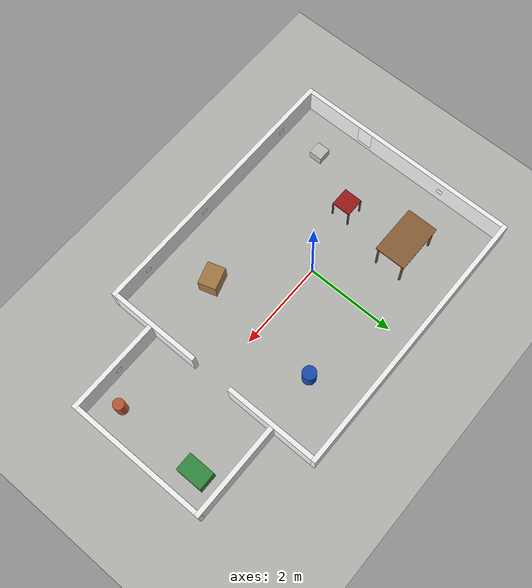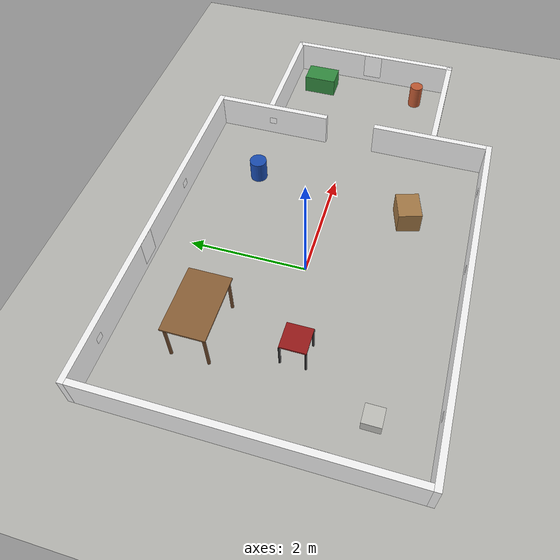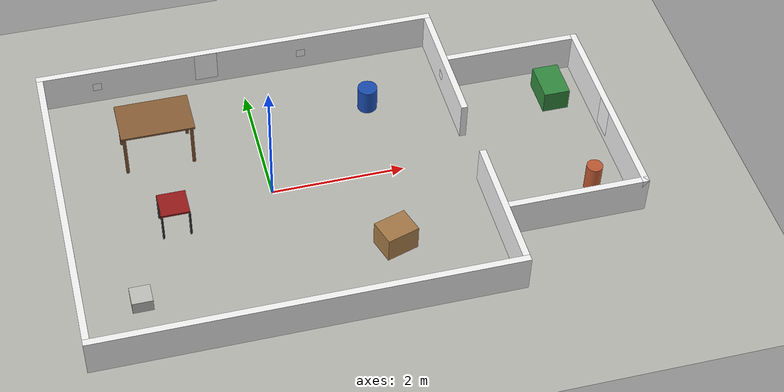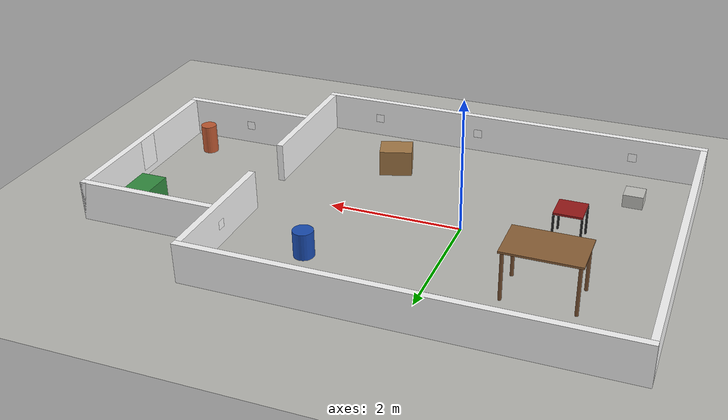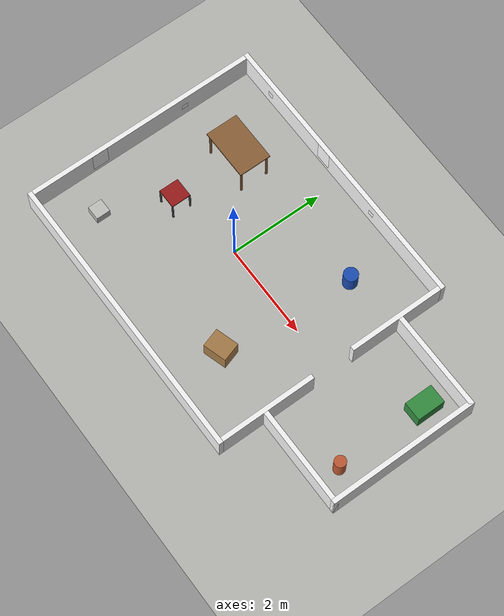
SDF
<?xml version="1.0"?>
<!-- GENERATED by scripts/gen_world.py from config/apartment_layout.yaml. Do not edit by hand. -->
<sdf version="1.8">
  <world name="apartment">
    <physics name="1ms" type="ignored">
      <max_step_size>0.001</max_step_size>
      <real_time_factor>1.0</real_time_factor>
    </physics>
    <plugin filename="ignition-gazebo-physics-system" name="ignition::gazebo::systems::Physics"/>
    <plugin filename="ignition-gazebo-user-commands-system" name="ignition::gazebo::systems::UserCommands"/>
    <plugin filename="ignition-gazebo-scene-broadcaster-system" name="ignition::gazebo::systems::SceneBroadcaster"/>
    <plugin filename="ignition-gazebo-sensors-system" name="ignition::gazebo::systems::Sensors">
      <render_engine>ogre2</render_engine>
    </plugin>
    <plugin filename="ignition-gazebo-imu-system" name="ignition::gazebo::systems::Imu"/>

    <scene>
      <ambient>0.6 0.6 0.6 1.0</ambient>
      <background>0.85 0.85 0.82 1</background>
      <shadows>false</shadows>
      <grid>false</grid>
    </scene>

    <light type="directional" name="sun">
      <cast_shadows>false</cast_shadows>
      <pose>0 0 10 0 0 0</pose>
      <diffuse>0.8 0.8 0.8 1</diffuse>
      <specular>0.1 0.1 0.1 1</specular>
      <direction>-0.3 0.2 -0.9</direction>
    </light>

    <model name="floor">
      <static>true</static>
      <pose>0 0 0 0 0 0</pose>
      <link name="link">
        <collision name="collision"><geometry><plane><normal>0 0 1</normal><size>14.0 10.0</size></plane></geometry><surface><friction><ode><mu>1.0</mu><mu2>1.0</mu2></ode></friction></surface></collision>
        <visual name="visual"><geometry><plane><normal>0 0 1</normal><size>14.0 10.0</size></plane></geometry><material><ambient>0.72 0.72 0.7 1.0</ambient><diffuse>0.72 0.72 0.7 1.0</diffuse><specular>0.02 0.02 0.02 1</specular></material></visual>
      </link>
    </model>
    <model name="wall_main_south">
      <static>true</static>
      <pose>0.0 -2.55 0.3 0 0 0</pose>
      <link name="link">
        <collision name="collision"><geometry><box><size>6.2 0.1 0.6</size></box></geometry></collision>
        <visual name="visual"><geometry><box><size>6.2 0.1 0.6</size></box></geometry><material><ambient>0.97 0.97 0.97 1.0</ambient><diffuse>0.97 0.97 0.97 1.0</diffuse><specular>0.02 0.02 0.02 1</specular></material></visual>
      </link>
    </model>
    <model name="wall_main_north">
      <static>true</static>
      <pose>0.0 2.55 0.3 0 0 0</pose>
      <link name="link">
        <collision name="collision"><geometry><box><size>6.2 0.1 0.6</size></box></geometry></collision>
        <visual name="visual"><geometry><box><size>6.2 0.1 0.6</size></box></geometry><material><ambient>0.97 0.97 0.97 1.0</ambient><diffuse>0.97 0.97 0.97 1.0</diffuse><specular>0.02 0.02 0.02 1</specular></material></visual>
      </link>
    </model>
    <model name="wall_main_west">
      <static>true</static>
      <pose>-3.05 0.0 0.3 0 0 0</pose>
      <link name="link">
        <collision name="collision"><geometry><box><size>0.1 5.0 0.6</size></box></geometry></collision>
        <visual name="visual"><geometry><box><size>0.1 5.0 0.6</size></box></geometry><material><ambient>0.97 0.97 0.97 1.0</ambient><diffuse>0.97 0.97 0.97 1.0</diffuse><specular>0.02 0.02 0.02 1</specular></material></visual>
      </link>
    </model>
    <model name="wall_shared_south">
      <static>true</static>
      <pose>3.05 -1.475 0.3 0 0 0</pose>
      <link name="link">
        <collision name="collision"><geometry><box><size>0.1 2.05 0.6</size></box></geometry></collision>
        <visual name="visual"><geometry><box><size>0.1 2.05 0.6</size></box></geometry><material><ambient>0.97 0.97 0.97 1.0</ambient><diffuse>0.97 0.97 0.97 1.0</diffuse><specular>0.02 0.02 0.02 1</specular></material></visual>
      </link>
    </model>
    <model name="wall_shared_north">
      <static>true</static>
      <pose>3.05 1.475 0.3 0 0 0</pose>
      <link name="link">
        <collision name="collision"><geometry><box><size>0.1 2.05 0.6</size></box></geometry></collision>
        <visual name="visual"><geometry><box><size>0.1 2.05 0.6</size></box></geometry><material><ambient>0.97 0.97 0.97 1.0</ambient><diffuse>0.97 0.97 0.97 1.0</diffuse><specular>0.02 0.02 0.02 1</specular></material></visual>
      </link>
    </model>
    <model name="wall_side_south">
      <static>true</static>
      <pose>4.15 -1.55 0.3 0 0 0</pose>
      <link name="link">
        <collision name="collision"><geometry><box><size>2.1 0.1 0.6</size></box></geometry></collision>
        <visual name="visual"><geometry><box><size>2.1 0.1 0.6</size></box></geometry><material><ambient>0.97 0.97 0.97 1.0</ambient><diffuse>0.97 0.97 0.97 1.0</diffuse><specular>0.02 0.02 0.02 1</specular></material></visual>
      </link>
    </model>
    <model name="wall_side_north">
      <static>true</static>
      <pose>4.15 1.55 0.3 0 0 0</pose>
      <link name="link">
        <collision name="collision"><geometry><box><size>2.1 0.1 0.6</size></box></geometry></collision>
        <visual name="visual"><geometry><box><size>2.1 0.1 0.6</size></box></geometry><material><ambient>0.97 0.97 0.97 1.0</ambient><diffuse>0.97 0.97 0.97 1.0</diffuse><specular>0.02 0.02 0.02 1</specular></material></visual>
      </link>
    </model>
    <model name="wall_side_east">
      <static>true</static>
      <pose>5.15 0.0 0.3 0 0 0</pose>
      <link name="link">
        <collision name="collision"><geometry><box><size>0.1 3.2 0.6</size></box></geometry></collision>
        <visual name="visual"><geometry><box><size>0.1 3.2 0.6</size></box></geometry><material><ambient>0.97 0.97 0.97 1.0</ambient><diffuse>0.97 0.97 0.97 1.0</diffuse><specular>0.02 0.02 0.02 1</specular></material></visual>
      </link>
    </model>
    <model name="table_leg_0">
      <static>true</static>
      <pose>-1.0 1.5 0.36 0 0 0.0</pose>
      <link name="link">
        <collision name="collision"><geometry><cylinder><radius>0.025</radius><length>0.72</length></cylinder></geometry></collision>
        <visual name="visual"><geometry><cylinder><radius>0.025</radius><length>0.72</length></cylinder></geometry><material><ambient>0.45 0.3 0.18 1.0</ambient><diffuse>0.45 0.3 0.18 1.0</diffuse><specular>0.02 0.02 0.02 1</specular></material></visual>
      </link>
    </model>
    <model name="table_leg_1">
      <static>true</static>
      <pose>-2.0 1.5 0.36 0 0 0.0</pose>
      <link name="link">
        <collision name="collision"><geometry><cylinder><radius>0.025</radius><length>0.72</length></cylinder></geometry></collision>
        <visual name="visual"><geometry><cylinder><radius>0.025</radius><length>0.72</length></cylinder></geometry><material><ambient>0.45 0.3 0.18 1.0</ambient><diffuse>0.45 0.3 0.18 1.0</diffuse><specular>0.02 0.02 0.02 1</specular></material></visual>
      </link>
    </model>
    <model name="table_leg_2">
      <static>true</static>
      <pose>-1.0 0.9 0.36 0 0 0.0</pose>
      <link name="link">
        <collision name="collision"><geometry><cylinder><radius>0.025</radius><length>0.72</length></cylinder></geometry></collision>
        <visual name="visual"><geometry><cylinder><radius>0.025</radius><length>0.72</length></cylinder></geometry><material><ambient>0.45 0.3 0.18 1.0</ambient><diffuse>0.45 0.3 0.18 1.0</diffuse><specular>0.02 0.02 0.02 1</specular></material></visual>
      </link>
    </model>
    <model name="table_leg_3">
      <static>true</static>
      <pose>-2.0 0.9 0.36 0 0 0.0</pose>
      <link name="link">
        <collision name="collision"><geometry><cylinder><radius>0.025</radius><length>0.72</length></cylinder></geometry></collision>
        <visual name="visual"><geometry><cylinder><radius>0.025</radius><length>0.72</length></cylinder></geometry><material><ambient>0.45 0.3 0.18 1.0</ambient><diffuse>0.45 0.3 0.18 1.0</diffuse><specular>0.02 0.02 0.02 1</specular></material></visual>
      </link>
    </model>
    <model name="table_top">
      <static>true</static>
      <pose>-1.5 1.2 0.735 0 0 0.0</pose>
      <link name="link">
        <collision name="collision"><geometry><box><size>1.1 0.7 0.03</size></box></geometry></collision>
        <visual name="visual"><geometry><box><size>1.1 0.7 0.03</size></box></geometry><material><ambient>0.55 0.38 0.22 1.0</ambient><diffuse>0.55 0.38 0.22 1.0</diffuse><specular>0.02 0.02 0.02 1</specular></material></visual>
      </link>
    </model>
    <model name="chair_leg_0">
      <static>true</static>
      <pose>-1.3 -0.1 0.225 0 0 0.0</pose>
      <link name="link">
        <collision name="collision"><geometry><box><size>0.03 0.03 0.45</size></box></geometry></collision>
        <visual name="visual"><geometry><box><size>0.03 0.03 0.45</size></box></geometry><material><ambient>0.15 0.15 0.15 1.0</ambient><diffuse>0.15 0.15 0.15 1.0</diffuse><specular>0.02 0.02 0.02 1</specular></material></visual>
      </link>
    </model>
    <model name="chair_leg_1">
      <static>true</static>
      <pose>-1.7 -0.1 0.225 0 0 0.0</pose>
      <link name="link">
        <collision name="collision"><geometry><box><size>0.03 0.03 0.45</size></box></geometry></collision>
        <visual name="visual"><geometry><box><size>0.03 0.03 0.45</size></box></geometry><material><ambient>0.15 0.15 0.15 1.0</ambient><diffuse>0.15 0.15 0.15 1.0</diffuse><specular>0.02 0.02 0.02 1</specular></material></visual>
      </link>
    </model>
    <model name="chair_leg_2">
      <static>true</static>
      <pose>-1.3 -0.5 0.225 0 0 0.0</pose>
      <link name="link">
        <collision name="collision"><geometry><box><size>0.03 0.03 0.45</size></box></geometry></collision>
        <visual name="visual"><geometry><box><size>0.03 0.03 0.45</size></box></geometry><material><ambient>0.15 0.15 0.15 1.0</ambient><diffuse>0.15 0.15 0.15 1.0</diffuse><specular>0.02 0.02 0.02 1</specular></material></visual>
      </link>
    </model>
    <model name="chair_leg_3">
      <static>true</static>
      <pose>-1.7 -0.5 0.225 0 0 0.0</pose>
      <link name="link">
        <collision name="collision"><geometry><box><size>0.03 0.03 0.45</size></box></geometry></collision>
        <visual name="visual"><geometry><box><size>0.03 0.03 0.45</size></box></geometry><material><ambient>0.15 0.15 0.15 1.0</ambient><diffuse>0.15 0.15 0.15 1.0</diffuse><specular>0.02 0.02 0.02 1</specular></material></visual>
      </link>
    </model>
    <model name="chair_seat">
      <static>true</static>
      <pose>-1.5 -0.3 0.465 0 0 0.0</pose>
      <link name="link">
        <collision name="collision"><geometry><box><size>0.42 0.42 0.03</size></box></geometry></collision>
        <visual name="visual"><geometry><box><size>0.42 0.42 0.03</size></box></geometry><material><ambient>0.6 0.1 0.1 1.0</ambient><diffuse>0.6 0.1 0.1 1.0</diffuse><specular>0.02 0.02 0.02 1</specular></material></visual>
      </link>
    </model>
    <model name="cardboard_box">
      <static>true</static>
      <pose>1.5 -1.4 0.2 0 0 0.3</pose>
      <link name="link">
        <collision name="collision"><geometry><box><size>0.5 0.4 0.4</size></box></geometry></collision>
        <visual name="visual"><geometry><box><size>0.5 0.4 0.4</size></box></geometry><material><ambient>0.65 0.48 0.28 1.0</ambient><diffuse>0.65 0.48 0.28 1.0</diffuse><specular>0.02 0.02 0.02 1</specular></material></visual>
      </link>
    </model>
    <model name="bin">
      <static>true</static>
      <pose>1.8 1.4 0.2 0 0 0.0</pose>
      <link name="link">
        <collision name="collision"><geometry><cylinder><radius>0.15</radius><length>0.4</length></cylinder></geometry></collision>
        <visual name="visual"><geometry><cylinder><radius>0.15</radius><length>0.4</length></cylinder></geometry><material><ambient>0.1 0.3 0.7 1.0</ambient><diffuse>0.1 0.3 0.7 1.0</diffuse><specular>0.02 0.02 0.02 1</specular></material></visual>
      </link>
    </model>
    <model name="grey_box">
      <static>true</static>
      <pose>-2.2 -1.6 0.1 0 0 0.0</pose>
      <link name="link">
        <collision name="collision"><geometry><box><size>0.3 0.3 0.2</size></box></geometry></collision>
        <visual name="visual"><geometry><box><size>0.3 0.3 0.2</size></box></geometry><material><ambient>0.76 0.76 0.74 1.0</ambient><diffuse>0.76 0.76 0.74 1.0</diffuse><specular>0.02 0.02 0.02 1</specular></material></visual>
      </link>
    </model>
    <model name="side_box">
      <static>true</static>
      <pose>4.6 0.95 0.175 0 0 0.0</pose>
      <link name="link">
        <collision name="collision"><geometry><box><size>0.4 0.6 0.35</size></box></geometry></collision>
        <visual name="visual"><geometry><box><size>0.4 0.6 0.35</size></box></geometry><material><ambient>0.2 0.55 0.25 1.0</ambient><diffuse>0.2 0.55 0.25 1.0</diffuse><specular>0.02 0.02 0.02 1</specular></material></visual>
      </link>
    </model>
    <model name="plant_pot">
      <static>true</static>
      <pose>4.6 -1.0 0.225 0 0 0.0</pose>
      <link name="link">
        <collision name="collision"><geometry><cylinder><radius>0.12</radius><length>0.45</length></cylinder></geometry></collision>
        <visual name="visual"><geometry><cylinder><radius>0.12</radius><length>0.45</length></cylinder></geometry><material><ambient>0.75 0.35 0.2 1.0</ambient><diffuse>0.75 0.35 0.2 1.0</diffuse><specular>0.02 0.02 0.02 1</specular></material></visual>
      </link>
    </model>
    <include><uri>model://poster_0</uri><name>poster_0</name><pose>-0.5000 2.4980 0.3500 0 0 -1.5708</pose></include>
    <include><uri>model://poster_1</uri><name>poster_1</name><pose>-2.9980 -1.0000 0.3500 0 0 0.0</pose></include>
    <include><uri>model://poster_2</uri><name>poster_2</name><pose>5.0980 -0.0000 0.3500 0 0 3.1416</pose></include>
    <include><uri>model://aruco_marker_0</uri><name>aruco_marker_0</name><pose>-2.0000 -2.4980 0.3000 0 0 1.5708</pose></include>
    <include><uri>model://aruco_marker_1</uri><name>aruco_marker_1</name><pose>0.5000 -2.4980 0.3000 0 0 1.5708</pose></include>
    <include><uri>model://aruco_marker_2</uri><name>aruco_marker_2</name><pose>2.2000 -2.4980 0.3000 0 0 1.5708</pose></include>
    <include><uri>model://aruco_marker_3</uri><name>aruco_marker_3</name><pose>1.0000 2.4980 0.3000 0 0 -1.5708</pose></include>
    <include><uri>model://aruco_marker_4</uri><name>aruco_marker_4</name><pose>-2.2000 2.4980 0.3000 0 0 -1.5708</pose></include>
    <include><uri>model://aruco_marker_5</uri><name>aruco_marker_5</name><pose>-2.9980 1.0000 0.3000 0 0 0.0</pose></include>
    <include><uri>model://aruco_marker_6</uri><name>aruco_marker_6</name><pose>2.9980 1.5000 0.3000 0 0 3.1416</pose></include>
    <include><uri>model://aruco_marker_7</uri><name>aruco_marker_7</name><pose>4.1000 -1.4980 0.3000 0 0 1.5708</pose></include>
  </world>
</sdf>

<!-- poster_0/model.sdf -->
<sdf version="1.8">
  <model name="poster_0">
    <static>true</static>
    <link name="link">
      <visual name="visual">
        <geometry><plane><normal>1 0 0</normal><size>0.5 0.35</size></plane></geometry>
        <material>
          <ambient>1 1 1 1</ambient><diffuse>1 1 1 1</diffuse><specular>0 0 0 1</specular>
          <pbr><metal>
            <albedo_map>model://poster_0/materials/textures/poster_0.png</albedo_map>
            <roughness>1.0</roughness><metalness>0.0</metalness>
          </metal></pbr>
        </material>
      </visual>
    </link>
  </model>
</sdf>

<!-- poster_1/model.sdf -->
<sdf version="1.8">
  <model name="poster_1">
    <static>true</static>
    <link name="link">
      <visual name="visual">
        <geometry><plane><normal>1 0 0</normal><size>0.5 0.35</size></plane></geometry>
        <material>
          <ambient>1 1 1 1</ambient><diffuse>1 1 1 1</diffuse><specular>0 0 0 1</specular>
          <pbr><metal>
            <albedo_map>model://poster_1/materials/textures/poster_1.png</albedo_map>
            <roughness>1.0</roughness><metalness>0.0</metalness>
          </metal></pbr>
        </material>
      </visual>
    </link>
  </model>
</sdf>

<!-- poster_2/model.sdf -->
<sdf version="1.8">
  <model name="poster_2">
    <static>true</static>
    <link name="link">
      <visual name="visual">
        <geometry><plane><normal>1 0 0</normal><size>0.5 0.35</size></plane></geometry>
        <material>
          <ambient>1 1 1 1</ambient><diffuse>1 1 1 1</diffuse><specular>0 0 0 1</specular>
          <pbr><metal>
            <albedo_map>model://poster_2/materials/textures/poster_2.png</albedo_map>
            <roughness>1.0</roughness><metalness>0.0</metalness>
          </metal></pbr>
        </material>
      </visual>
    </link>
  </model>
</sdf>

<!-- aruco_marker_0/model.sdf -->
<sdf version="1.8">
  <model name="aruco_marker_0">
    <static>true</static>
    <link name="link">
      <visual name="visual">
        <geometry><plane><normal>1 0 0</normal><size>0.13333333333333333 0.13333333333333333</size></plane></geometry>
        <material>
          <ambient>1 1 1 1</ambient><diffuse>1 1 1 1</diffuse><specular>0 0 0 1</specular>
          <pbr><metal>
            <albedo_map>model://aruco_marker_0/materials/textures/aruco_marker_0.png</albedo_map>
            <roughness>1.0</roughness><metalness>0.0</metalness>
          </metal></pbr>
        </material>
      </visual>
    </link>
  </model>
</sdf>

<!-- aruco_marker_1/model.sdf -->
<sdf version="1.8">
  <model name="aruco_marker_1">
    <static>true</static>
    <link name="link">
      <visual name="visual">
        <geometry><plane><normal>1 0 0</normal><size>0.13333333333333333 0.13333333333333333</size></plane></geometry>
        <material>
          <ambient>1 1 1 1</ambient><diffuse>1 1 1 1</diffuse><specular>0 0 0 1</specular>
          <pbr><metal>
            <albedo_map>model://aruco_marker_1/materials/textures/aruco_marker_1.png</albedo_map>
            <roughness>1.0</roughness><metalness>0.0</metalness>
          </metal></pbr>
        </material>
      </visual>
    </link>
  </model>
</sdf>

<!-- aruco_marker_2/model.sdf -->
<sdf version="1.8">
  <model name="aruco_marker_2">
    <static>true</static>
    <link name="link">
      <visual name="visual">
        <geometry><plane><normal>1 0 0</normal><size>0.13333333333333333 0.13333333333333333</size></plane></geometry>
        <material>
          <ambient>1 1 1 1</ambient><diffuse>1 1 1 1</diffuse><specular>0 0 0 1</specular>
          <pbr><metal>
            <albedo_map>model://aruco_marker_2/materials/textures/aruco_marker_2.png</albedo_map>
            <roughness>1.0</roughness><metalness>0.0</metalness>
          </metal></pbr>
        </material>
      </visual>
    </link>
  </model>
</sdf>

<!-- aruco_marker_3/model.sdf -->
<sdf version="1.8">
  <model name="aruco_marker_3">
    <static>true</static>
    <link name="link">
      <visual name="visual">
        <geometry><plane><normal>1 0 0</normal><size>0.13333333333333333 0.13333333333333333</size></plane></geometry>
        <material>
          <ambient>1 1 1 1</ambient><diffuse>1 1 1 1</diffuse><specular>0 0 0 1</specular>
          <pbr><metal>
            <albedo_map>model://aruco_marker_3/materials/textures/aruco_marker_3.png</albedo_map>
            <roughness>1.0</roughness><metalness>0.0</metalness>
          </metal></pbr>
        </material>
      </visual>
    </link>
  </model>
</sdf>

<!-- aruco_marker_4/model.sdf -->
<sdf version="1.8">
  <model name="aruco_marker_4">
    <static>true</static>
    <link name="link">
      <visual name="visual">
        <geometry><plane><normal>1 0 0</normal><size>0.13333333333333333 0.13333333333333333</size></plane></geometry>
        <material>
          <ambient>1 1 1 1</ambient><diffuse>1 1 1 1</diffuse><specular>0 0 0 1</specular>
          <pbr><metal>
            <albedo_map>model://aruco_marker_4/materials/textures/aruco_marker_4.png</albedo_map>
            <roughness>1.0</roughness><metalness>0.0</metalness>
          </metal></pbr>
        </material>
      </visual>
    </link>
  </model>
</sdf>

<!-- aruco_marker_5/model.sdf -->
<sdf version="1.8">
  <model name="aruco_marker_5">
    <static>true</static>
    <link name="link">
      <visual name="visual">
        <geometry><plane><normal>1 0 0</normal><size>0.13333333333333333 0.13333333333333333</size></plane></geometry>
        <material>
          <ambient>1 1 1 1</ambient><diffuse>1 1 1 1</diffuse><specular>0 0 0 1</specular>
          <pbr><metal>
            <albedo_map>model://aruco_marker_5/materials/textures/aruco_marker_5.png</albedo_map>
            <roughness>1.0</roughness><metalness>0.0</metalness>
          </metal></pbr>
        </material>
      </visual>
    </link>
  </model>
</sdf>

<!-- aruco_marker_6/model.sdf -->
<sdf version="1.8">
  <model name="aruco_marker_6">
    <static>true</static>
    <link name="link">
      <visual name="visual">
        <geometry><plane><normal>1 0 0</normal><size>0.13333333333333333 0.13333333333333333</size></plane></geometry>
        <material>
          <ambient>1 1 1 1</ambient><diffuse>1 1 1 1</diffuse><specular>0 0 0 1</specular>
          <pbr><metal>
            <albedo_map>model://aruco_marker_6/materials/textures/aruco_marker_6.png</albedo_map>
            <roughness>1.0</roughness><metalness>0.0</metalness>
          </metal></pbr>
        </material>
      </visual>
    </link>
  </model>
</sdf>

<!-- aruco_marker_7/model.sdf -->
<sdf version="1.8">
  <model name="aruco_marker_7">
    <static>true</static>
    <link name="link">
      <visual name="visual">
        <geometry><plane><normal>1 0 0</normal><size>0.13333333333333333 0.13333333333333333</size></plane></geometry>
        <material>
          <ambient>1 1 1 1</ambient><diffuse>1 1 1 1</diffuse><specular>0 0 0 1</specular>
          <pbr><metal>
            <albedo_map>model://aruco_marker_7/materials/textures/aruco_marker_7.png</albedo_map>
            <roughness>1.0</roughness><metalness>0.0</metalness>
          </metal></pbr>
        </material>
      </visual>
    </link>
  </model>
</sdf>
